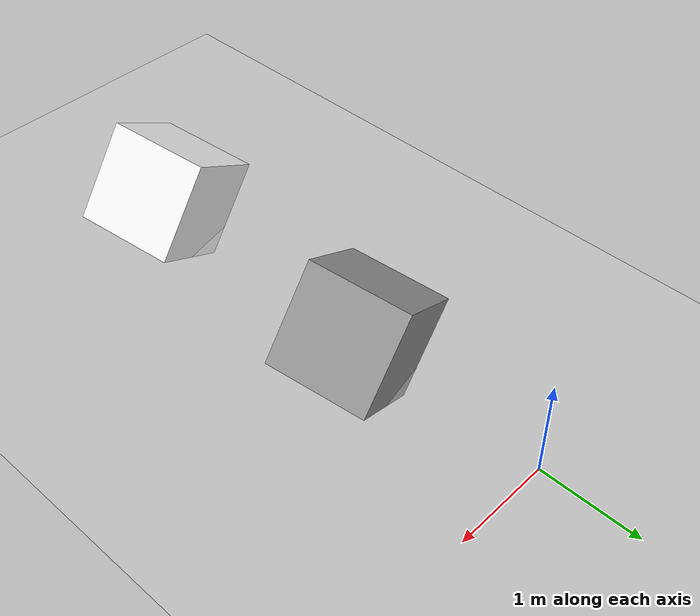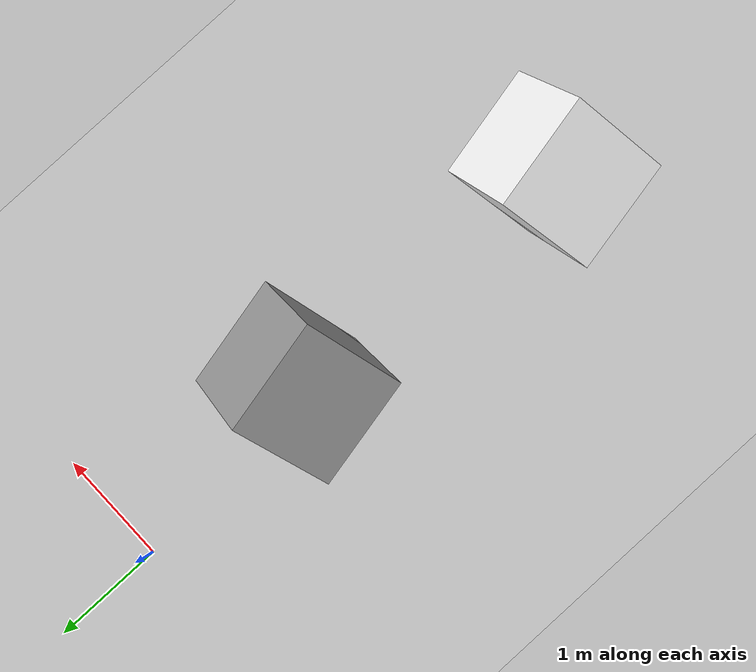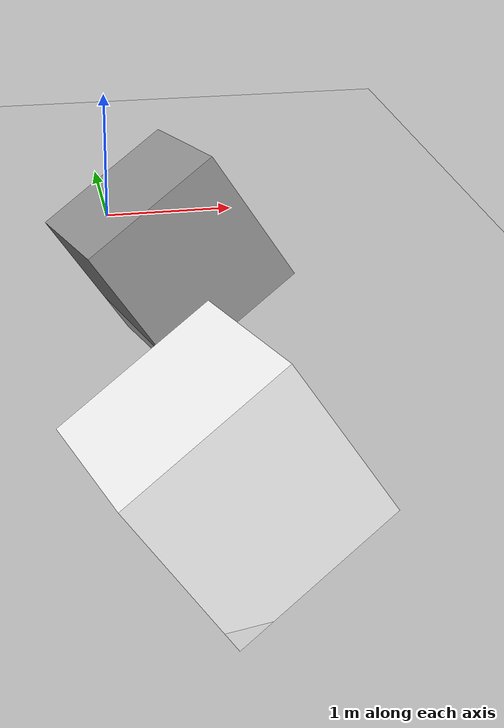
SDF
<sdf version="1.6">
 <world name="default">
  <light name="sun" type="directional">
   <yunfei>99.2</yunfei>
   <pose>0 0 10 0 -0 0</pose>
   <diffuse>0.8 0.8 0.8 1</diffuse>
   <specular>0.2 0.2 0.2 1</specular>
   <attenuation>
    <range>1000</range>
    <constant>0.9</constant>
    <linear>0.01</linear>
    <quadratic>0.001</quadratic>
   </attenuation>
   <direction>-0.5 0.1 -0.9</direction>
  </light>
  <model name="ground_plane">
   <static>1</static>
   <link name="link">
    <collision name="collision">
     <geometry><plane><normal>0 0 1</normal><size>100 100</size></plane></geometry>
     <surface>
      <contact><collide_bitmask>65535</collide_bitmask></contact>
      <friction><ode><mu>100</mu><mu2>50</mu2></ode></friction>
     </surface>
    </collision>
    <visual name="visual">
     <cast_shadows>0</cast_shadows>
     <geometry><plane><normal>0 0 1</normal><size>100 100</size></plane></geometry>
     <material>
      <script><uri>file://media/materials/scripts/gazebo.material</uri><name>Gazebo/Grey</name></script>
     </material>
    </visual>
   </link>
  </model>
  <gravity>0 0 -9.8</gravity>
  <magnetic_field>6e-06 2.3e-05 -4.2e-05</magnetic_field>
  <atmosphere type="adiabatic"/>
  <physics name="default_physics" default="0" type="ode">
   <max_step_size>0.001</max_step_size>
   <real_time_factor>1</real_time_factor>
   <real_time_update_rate>1000</real_time_update_rate>
  </physics>
  <scene><ambient>0.4 0.4 0.4 1</ambient><background>0.7 0.7 0.7 1</background><shadows>1</shadows></scene>
  <audio><device>default</device></audio>
  <spherical_coordinates>
   <surface_model>EARTH_WGS84</surface_model>
   <latitude_deg>0</latitude_deg>
   <longitude_deg>0</longitude_deg>
   <elevation>0</elevation>
   <heading_deg>0</heading_deg>
  </spherical_coordinates>
  <model name="unit_box_0">
   <static>1</static>
   <pose>0.223196 -1.84719 0.499995 -2.89297 -0.988287 -3.14159</pose>
   <link name="unit_box_0::link">
    <inertial>
     <mass>1</mass>
     <inertia>
      <ixx>0.166667</ixx>
      <ixy>0</ixy>
      <ixz>0</ixz>
      <iyy>0.166667</iyy>
      <iyz>0</iyz>
      <izz>0.166667</izz>
     </inertia>
    </inertial>
    <collision name="collision"><geometry><box><size>1 1 1</size></box></geometry></collision>
    <visual name="visual">
     <geometry><mesh><scale>1 1 1</scale><uri>cube.obj</uri></mesh></geometry>
     <material>
      <diffuse>1 1 1 1</diffuse>
      <script><name>Gazebo/Grey</name><uri>file://media/materials/scripts/gazebo.material</uri></script>
     </material>
    </visual>
   </link>
  </model>
  <model name="unit_box_0_clone">
   <pose>0.105158 -4.55002 0.499995 -2.89297 -0.988287 -3.14159</pose>
   <link name="unit_box_0::link">
    <inertial>
     <mass>1</mass>
     <inertia>
      <ixx>0.166667</ixx>
      <ixy>0</ixy>
      <ixz>0</ixz>
      <iyy>0.166667</iyy>
      <iyz>0</iyz>
      <izz>0.166667</izz>
     </inertia>
    </inertial>
    <collision name="collision1"><geometry><box><size>1 1 1</size></box></geometry></collision>
    <visual name="visual">
     <geometry><mesh><scale>1 1 1</scale><uri>cube.obj</uri></mesh></geometry>
     <material><diffuse>1 1 1 1</diffuse></material>
    </visual>
   </link>
  </model>
 </world>
</sdf>
